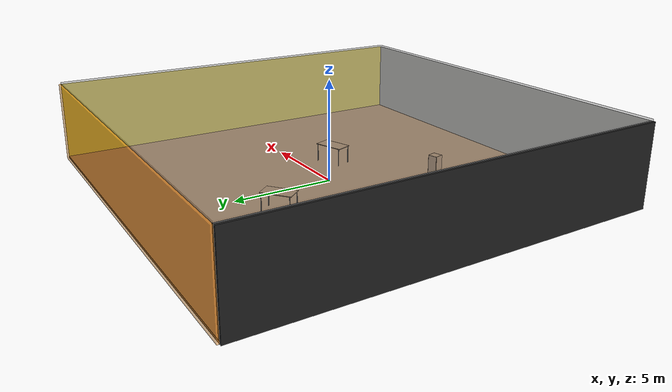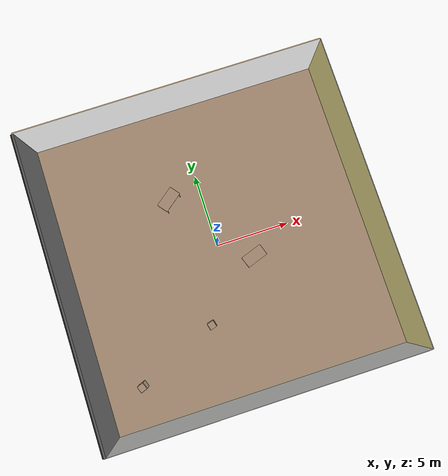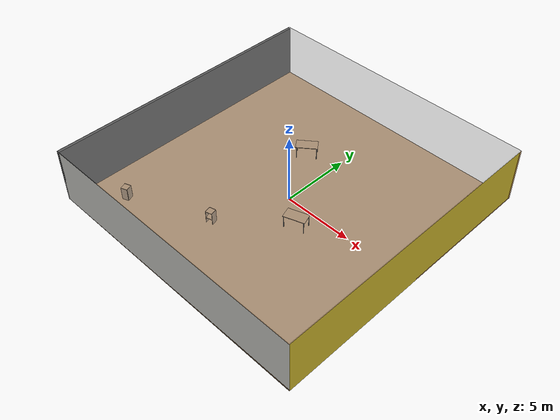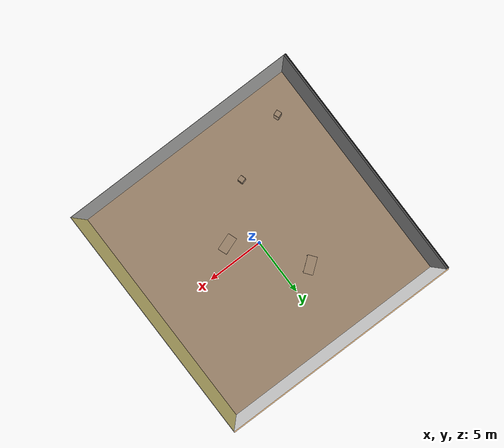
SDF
<sdf version="1.4">
 <world name="default">
  <physics type="ode">
   <max_step_size>0.001</max_step_size>
   <real_time_factor>1</real_time_factor>
   <real_time_update_rate>1000</real_time_update_rate>
   <gravity>0 0 -9.8</gravity>
  </physics>
  <scene><ambient>0.4 0.4 0.4 1</ambient><background>0.7 0.7 0.7 1</background><shadows>1</shadows></scene>
  <model name="Surrounding">
   <static>1</static>
   <link name="Ceiling">
    <collision name="Ceiling_Collision"><geometry><box><size>20 20 0.1</size></box></geometry></collision>
    <visual name="Ceiling_Visual">
     <geometry><box><size>20 20 0.1</size></box></geometry>
     <material>
      <script><uri>file://media/materials/scripts/gazebo.material</uri><name>Gazebo/GreyTransparent</name></script>
     </material>
    </visual>
    <pose>0 0 4.05 0 0 0</pose>
   </link>
   <link name="Wall_South">
    <collision name="Wall_South_Collision">
     <geometry><box><size>20 0 4</size></box></geometry>
     <pose>0 0 2 0 -0 0</pose>
    </collision>
    <visual name="Wall_South_Visual">
     <pose>0 0 2 0 -0 0</pose>
     <geometry><box><size>20 0 4</size></box></geometry>
     <material>
      <script><uri>file://media/materials/scripts/gazebo.material</uri><name>Gazebo/CeilingTiled</name></script>
     </material>
    </visual>
    <velocity_decay><linear>0</linear><angular>0</angular></velocity_decay>
    <pose>0 -10 0 0 -0 0</pose>
   </link>
   <link name="Wall_East">
    <collision name="Wall_21_Collision">
     <geometry><box><size>20 0 4</size></box></geometry>
     <pose>0 0 2 0 -0 0</pose>
    </collision>
    <visual name="Wall_21_Visual">
     <pose>0 0 2 0 -0 0</pose>
     <geometry><box><size>20 0 4</size></box></geometry>
     <material>
      <script><uri>file://media/materials/scripts/gazebo.material</uri><name>Gazebo/ZincYellow</name></script>
     </material>
    </visual>
    <velocity_decay><linear>0</linear><angular>0</angular></velocity_decay>
    <pose>10 0 0 0 -0 1.5708</pose>
   </link>
   <link name="Wall_North">
    <collision name="Wall_22_Collision">
     <geometry><box><size>20 0.2 4</size></box></geometry>
     <pose>0 0 2 0 -0 0</pose>
    </collision>
    <visual name="Wall_22_Visual">
     <pose>0 0 2 0 -0 0</pose>
     <geometry><box><size>20 0.2 4</size></box></geometry>
     <material>
      <script>
       <uri>file://media/materials/scripts/gazebo.material</uri>
       <name>Gazebo/OrangeTransparent</name>
      </script>
     </material>
    </visual>
    <velocity_decay><linear>0</linear><angular>0</angular></velocity_decay>
    <pose>0 10 0 0 -0 0</pose>
   </link>
   <link name="Wall_West">
    <collision name="Wall_23_Collision">
     <geometry><box><size>20 0.2 4</size></box></geometry>
     <pose>0 0 2 0 -0 0</pose>
    </collision>
    <visual name="Wall_23_Visual">
     <pose>0 0 2 0 -0 0</pose>
     <geometry><box><size>20 0.2 4</size></box></geometry>
     <material>
      <script><uri>file://media/materials/scripts/gazebo.material</uri><name>Gazebo/FlatBlack</name></script>
     </material>
    </visual>
    <velocity_decay><linear>0</linear><angular>0</angular></velocity_decay>
    <pose>-10 0 0 0 0 -1.5708</pose>
   </link>
   <link name="Ground_link">
    <collision name="collision">
     <pose>0 0 .05 0 -0 0</pose>
     <geometry><box><size>20 20 0.1</size></box></geometry>
    </collision>
    <visual name="visual">
     <pose>0 0 .05 0 -0 0</pose>
     <geometry><box><size>20 20 0.1</size></box></geometry>
     <material>
      <script><uri>file://media/materials/scripts/gazebo.material</uri><name>Gazebo/WoodFloor</name></script>
     </material>
    </visual>
   </link>
   <static>1</static>
  </model>
  <spherical_coordinates>
   <surface_model>EARTH_WGS84</surface_model>
   <latitude_deg>0</latitude_deg>
   <longitude_deg>0</longitude_deg>
   <elevation>0</elevation>
   <heading_deg>0</heading_deg>
  </spherical_coordinates>
  <light name="lightball_0" type="diffuse">
   <diffuse>0.8 0.8 0.8 1</diffuse>
   <specular>0.2 0.2 0.2 1</specular>
   <attenuation>
    <range>100</range>
    <constant>0.7</constant>
    <linear>0.01</linear>
    <quadratic>0.001</quadratic>
   </attenuation>
   <direction>-0.5 0.1 -0.9</direction>
   <pose>-7.68303972399 3.99121770662 1.89835936899 0 0 0</pose>
  </light>
  <light name="lightball_1" type="diffuse">
   <diffuse>0.8 0.8 0.8 1</diffuse>
   <specular>0.2 0.2 0.2 1</specular>
   <attenuation>
    <range>100</range>
    <constant>0.7</constant>
    <linear>0.01</linear>
    <quadratic>0.001</quadratic>
   </attenuation>
   <direction>-0.5 0.1 -0.9</direction>
   <pose>7.53701832976 -3.71621486397 2.0985102546 0 0 0</pose>
  </light>
  <light name="lightball_2" type="diffuse">
   <diffuse>0.8 0.8 0.8 1</diffuse>
   <specular>0.2 0.2 0.2 1</specular>
   <attenuation>
    <range>100</range>
    <constant>0.7</constant>
    <linear>0.01</linear>
    <quadratic>0.001</quadratic>
   </attenuation>
   <direction>-0.5 0.1 -0.9</direction>
   <pose>-8.65852230011 9.08011040115 0.717698537332 0 0 0</pose>
  </light>
  <light name="lightball_3" type="diffuse">
   <diffuse>0.8 0.8 0.8 1</diffuse>
   <specular>0.2 0.2 0.2 1</specular>
   <attenuation>
    <range>100</range>
    <constant>0.7</constant>
    <linear>0.01</linear>
    <quadratic>0.001</quadratic>
   </attenuation>
   <direction>-0.5 0.1 -0.9</direction>
   <pose>3.84745129837 5.80611185895 1.80858560088 0 0 0</pose>
  </light>
  <light name="lightball_4" type="diffuse">
   <diffuse>0.8 0.8 0.8 1</diffuse>
   <specular>0.2 0.2 0.2 1</specular>
   <attenuation>
    <range>100</range>
    <constant>0.7</constant>
    <linear>0.01</linear>
    <quadratic>0.001</quadratic>
   </attenuation>
   <direction>-0.5 0.1 -0.9</direction>
   <pose>-3.26318539862 6.9009052119 1.72021717668 0 0 0</pose>
  </light>
  <light name="lightball_5" type="diffuse">
   <diffuse>0.8 0.8 0.8 1</diffuse>
   <specular>0.2 0.2 0.2 1</specular>
   <attenuation>
    <range>100</range>
    <constant>0.7</constant>
    <linear>0.01</linear>
    <quadratic>0.001</quadratic>
   </attenuation>
   <direction>-0.5 0.1 -0.9</direction>
   <pose>0.44287935186 -7.97507250017 3.79471415019 0 0 0</pose>
  </light>
  <light name="lightball_6" type="diffuse">
   <diffuse>0.8 0.8 0.8 1</diffuse>
   <specular>0.2 0.2 0.2 1</specular>
   <attenuation>
    <range>100</range>
    <constant>0.7</constant>
    <linear>0.01</linear>
    <quadratic>0.001</quadratic>
   </attenuation>
   <direction>-0.5 0.1 -0.9</direction>
   <pose>-7.04603338102 -7.51982955255 2.29502084844 0 0 0</pose>
  </light>
  <light name="lightball_7" type="diffuse">
   <diffuse>0.8 0.8 0.8 1</diffuse>
   <specular>0.2 0.2 0.2 1</specular>
   <attenuation>
    <range>100</range>
    <constant>0.7</constant>
    <linear>0.01</linear>
    <quadratic>0.001</quadratic>
   </attenuation>
   <direction>-0.5 0.1 -0.9</direction>
   <pose>-2.35960566632 2.53794125443 3.28784769023 0 0 0</pose>
  </light>
  <light name="lightball_8" type="diffuse">
   <diffuse>0.8 0.8 0.8 1</diffuse>
   <specular>0.2 0.2 0.2 1</specular>
   <attenuation>
    <range>100</range>
    <constant>0.7</constant>
    <linear>0.01</linear>
    <quadratic>0.001</quadratic>
   </attenuation>
   <direction>-0.5 0.1 -0.9</direction>
   <pose>0.102073702121 -5.72432386066 1.23897322636 0 0 0</pose>
  </light>
  <light name="lightball_9" type="diffuse">
   <diffuse>0.8 0.8 0.8 1</diffuse>
   <specular>0.2 0.2 0.2 1</specular>
   <attenuation>
    <range>100</range>
    <constant>0.7</constant>
    <linear>0.01</linear>
    <quadratic>0.001</quadratic>
   </attenuation>
   <direction>-0.5 0.1 -0.9</direction>
   <pose>0.789540672163 0.662842986989 3.87723158466 0 0 0</pose>
  </light>
  <include><uri>model://cabinet</uri><pose>-7.41993291606 -7.3133809524 0 0 0 0.364810140918</pose></include>
  <include><uri>model://cabinet</uri><pose>-1.95386642842 -4.91881157445 0 0 0 1.83267789064</pose></include>
  <include><uri>model://table</uri><pose>-2.16468202328 3.86112833563 0 0 0 0.663851832024</pose></include>
  <include><uri>model://table</uri><pose>2.08122600997 -1.48119232985 0 0 0 0.33384866538</pose></include>
 </world>
</sdf>

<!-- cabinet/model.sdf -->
<sdf version="1.5">
  <model name="cabinet">
    <static>true</static>
    <link name="cabinet_bottom_plate">
      <inertial>
        <pose>0 0 -1 0 0 0</pose>
        <inertia>
          <ixx>2.050000</ixx>
          <ixy>0</ixy>
          <ixz>0</ixz>
          <iyy>2.050000</iyy>
          <iyz>0</iyz>
          <izz>2.050000</izz>
        </inertia>
        <mass>25.000000</mass>
      </inertial>
      <collision name="cabinet_bottom_plate_geom">
        <pose>0 0 0.010000 0 0 0</pose>
        <geometry>
          <box>
            <size>0.450000 0.450000 0.020000</size>
          </box>
        </geometry>
      </collision>
      <visual name="cabinet_bottom_plate_geom_visual">
        <pose>0 0 0.010000 0 0 0</pose>
        <geometry>
          <box>
            <size>0.450000 0.450000 0.020000</size>
          </box>
        </geometry>
        <material>
          <script>
            <uri>model://media/materials/scripts/gazebo.material</uri>
            <name>Gazebo/Wood</name>
          </script>
        </material>
      </visual>
      <collision name="cabinet_bottom_plate_geom_cabinet_back_plate">
        <pose>0.235000 0 0.510000 0 0 0</pose>
        <geometry>
          <box>
            <size>0.020000 0.450000 1.020000</size>
          </box>
        </geometry>
      </collision>
      <visual name="cabinet_bottom_plate_geom_cabinet_back_plate_visual">
        <pose>0.235000 0 0.510000 0 0 0</pose>
        <geometry>
          <box>
            <size>0.020000 0.450000 1.020000</size>
          </box>
        </geometry>
        <material>
          <script>
            <uri>model://media/materials/scripts/gazebo.material</uri>
            <name>Gazebo/Wood</name>
          </script>
        </material>
      </visual>
      <collision name="cabinet_bottom_plate_geom_cabinet_left_plate">
        <pose>0 0.235000 0.510000 0 0 0</pose>
        <geometry>
          <box>
            <size>0.450000 0.020000 1.020000</size>
          </box>
        </geometry>
      </collision>
      <visual name="cabinet_bottom_plate_geom_cabinet_left_plate_visual">
        <pose>0 0.235000 0.510000 0 0 0</pose>
        <geometry>
          <box>
            <size>0.450000 0.020000 1.020000</size>
          </box>
        </geometry>
        <material>
          <script>
            <uri>model://media/materials/scripts/gazebo.material</uri>
            <name>Gazebo/Wood</name>
          </script>
        </material>
      </visual>
      <collision name="cabinet_bottom_plate_geom_cabinet_middle_plate">
        <pose>0 0 0.510000 0 0 0</pose>
        <geometry>
          <box>
            <size>0.450000 0.450000 0.020000</size>
          </box>
        </geometry>
      </collision>
      <visual name="cabinet_bottom_plate_geom_cabinet_middle_plate_visual">
        <pose>0 0 0.510000 0 0 0</pose>
        <geometry>
          <box>
            <size>0.450000 0.450000 0.020000</size>
          </box>
        </geometry>
        <material>
          <script>
            <uri>model://media/materials/scripts/gazebo.material</uri>
            <name>Gazebo/Wood</name>
          </script>
        </material>
      </visual>
      <collision name="cabinet_bottom_plate_geom_cabinet_right_plate">
        <pose>0 -0.235000 0.510000 0 0 0</pose>
        <geometry>
          <box>
            <size>0.450000 0.020000 1.020000</size>
          </box>
        </geometry>
      </collision>
      <visual name="cabinet_bottom_plate_geom_cabinet_right_plate_visual">
        <pose>0 -0.235000 0.510000 0 0 0</pose>
        <geometry>
          <box>
            <size>0.450000 0.020000 1.020000</size>
          </box>
        </geometry>
        <material>
          <script>
            <uri>model://media/materials/scripts/gazebo.material</uri>
            <name>Gazebo/Wood</name>
          </script>
        </material>
      </visual>
      <collision name="cabinet_bottom_plate_geom_cabinet_top_plate">
        <pose>0 0 1.010000 0 0 0</pose>
        <geometry>
          <box>
            <size>0.450000 0.450000 0.020000</size>
          </box>
        </geometry>
      </collision>
      <visual name="cabinet_bottom_plate_geom_cabinet_top_plate_visual">
        <pose>0 0 1.010000 0 0 0</pose>
        <geometry>
          <box>
            <size>0.450000 0.450000 0.020000</size>
          </box>
        </geometry>
        <material>
          <script>
            <uri>model://media/materials/scripts/gazebo.material</uri>
            <name>Gazebo/Wood</name>
          </script>
        </material>
      </visual>
    </link>
  </model>
</sdf>

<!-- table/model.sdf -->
<sdf version="1.5">
  <model name="table">
    <static>true</static>
    <link name="link">
      <collision name="surface">
        <pose>0 0 1.0 0 0 0</pose>
        <geometry>
          <box>
            <size>1.5 0.8 0.03</size>
          </box>
        </geometry>
        <surface>
          <friction>
            <ode>
              <mu>0.6</mu>
              <mu2>0.6</mu2>
            </ode>
          </friction>
        </surface>
      </collision>
      <visual name="visual1">
        <pose>0 0 1.0 0 0 0</pose>
        <geometry>
          <box>
            <size>1.5 0.8 0.03</size>
          </box>
        </geometry>
        <material>
          <script>
            <uri>model://media/materials/scripts/gazebo.material</uri>
            <name>Gazebo/Wood</name>
          </script>
        </material>
      </visual>
      <collision name="front_left_leg">
        <pose>0.68 0.38 0.5 0 0 0</pose>
        <geometry>
          <cylinder>
            <radius>0.02</radius>
            <length>1.0</length>
          </cylinder>
        </geometry>
      </collision>
      <visual name="front_left_leg">
        <pose>0.68 0.38 0.5 0 0 0</pose>
        <geometry>
          <cylinder>
            <radius>0.02</radius>
            <length>1.0</length>
          </cylinder>
        </geometry>
        <material>
          <script>
            <uri>model://media/materials/scripts/gazebo.material</uri>
            <name>Gazebo/Grey</name>
          </script>
        </material>
      </visual>
      <collision name="front_right_leg">
        <pose>0.68 -0.38 0.5 0 0 0</pose>
        <geometry>
          <cylinder>
            <radius>0.02</radius>
            <length>1.0</length>
          </cylinder>
        </geometry>
      </collision>
      <visual name="front_right_leg">
        <pose>0.68 -0.38 0.5 0 0 0</pose>
        <geometry>
          <cylinder>
            <radius>0.02</radius>
            <length>1.0</length>
          </cylinder>
        </geometry>
        <material>
          <script>
            <uri>model://media/materials/scripts/gazebo.material</uri>
            <name>Gazebo/Grey</name>
          </script>
        </material>
      </visual>
      <collision name="back_right_leg">
        <pose>-0.68 -0.38 0.5 0 0 0</pose>
        <geometry>
          <cylinder>
            <radius>0.02</radius>
            <length>1.0</length>
          </cylinder>
        </geometry>
      </collision>
      <visual name="back_right_leg">
        <pose>-0.68 -0.38 0.5 0 0 0</pose>
        <geometry>
          <cylinder>
            <radius>0.02</radius>
            <length>1.0</length>
          </cylinder>
        </geometry>
        <material>
          <script>
            <uri>model://media/materials/scripts/gazebo.material</uri>
            <name>Gazebo/Grey</name>
          </script>
        </material>
      </visual>
      <collision name="back_left_leg">
        <pose>-0.68 0.38 0.5 0 0 0</pose>
        <geometry>
          <cylinder>
            <radius>0.02</radius>
            <length>1.0</length>
          </cylinder>
        </geometry>
      </collision>
      <visual name="back_left_leg">
        <pose>-0.68 0.38 0.5 0 0 0</pose>
        <geometry>
          <cylinder>
            <radius>0.02</radius>
            <length>1.0</length>
          </cylinder>
        </geometry>
        <material>
          <script>
            <uri>model://media/materials/scripts/gazebo.material</uri>
            <name>Gazebo/Grey</name>
          </script>
        </material>
      </visual>
    </link>
  </model>
</sdf>
